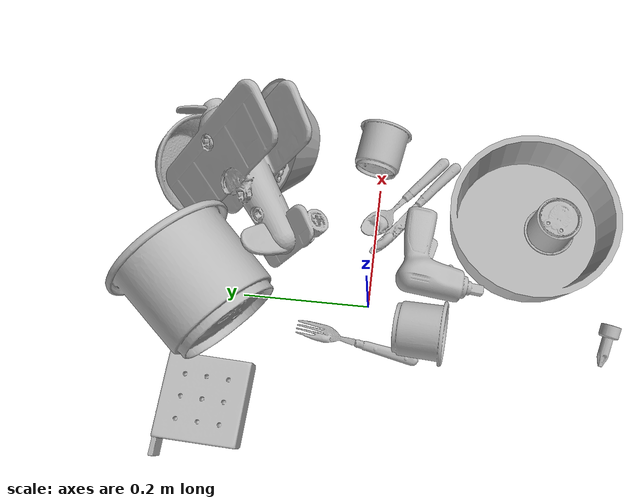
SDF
<sdf version="1.4">
  <world name="default">
    <light name="light1" type="point">
      <pose>0 0 1 0 0 0</pose>
      <diffuse>3 3 3 1</diffuse>
      <specular>3 3 3 1</specular>
    </light>
    <light name="light2" type="point">
      <pose>0 0.5 2 0 0 0</pose>
      <diffuse>1 1 1 1</diffuse>
      <specular>1 1 1 1</specular>
    </light>
    <light name="light3" type="point">
      <pose>0 0.5 2 0 0 0</pose>
      <diffuse>3 3 3 1</diffuse>
      <specular>3 3 3 1</specular>
    </light>
    <scene>
      <ambient>0.7 0.7 0.7</ambient>
    </scene>
    <model name="plate1">
      <link name="link_plate1">
        <collision name="default">
          <geometry>
            <mesh>
              <uri>model://pan_tefal/collision_meshes/collision.obj</uri>
              <scale>1.0 1.0 1.0</scale>
            </mesh>
          </geometry>
          <surface>
            <friction>
              <ode>
                <mu>0.5</mu>
                <mu2>0.5</mu2>
              </ode>
            </friction>
          <contact>
        <ode>
            <max_vel>0</max_vel>
            <min_depth>0.0001</min_depth>
            <kp>1e8</kp>
        </ode>
    </contact></surface>
        </collision>
        <visual name="default">
          <geometry>
            <mesh>
              <uri>model://pan_tefal/visual_meshes/visual.dae</uri>
              <scale>1.0 1.0 1.0</scale>
            </mesh>
          </geometry>
        </visual>
        <inertial>
          <mass>1.2414644956588745</mass>
          <pose>-0.0001800298341549933 3.278589065303095e-05 -0.00851493515074253 0.0008190165640447202 -0.0003301348973125405 -0.33185319573483557</pose>
          <inertia>
            <ixx>0.00856977</ixx>
            <iyy>0.008625018</iyy>
            <izz>0.015775295</izz>
            <ixy>0</ixy>
            <ixz>0</ixz>
            <iyz>0</iyz>
          </inertia>
        </inertial>
      </link>
      <pose>0.15739698708057404 -0.2437676340341568 0.03797392174601555 0.0004196589502284697 0.00042585784603500515 1.2570588503622488</pose>
    </model>
    <model name="cup1">
      <link name="link_cup1">
        <collision name="default">
          <geometry>
            <mesh>
              <uri>model://j_cups/collision_meshes/collision.obj</uri>
              <scale>2.0 2.0 2.0</scale>
            </mesh>
          </geometry>
          <surface>
            <friction>
              <ode>
                <mu>0.5</mu>
                <mu2>0.5</mu2>
              </ode>
            </friction>
          <contact>
        <ode>
            <max_vel>0</max_vel>
            <min_depth>0.0001</min_depth>
            <kp>1e8</kp>
        </ode>
    </contact></surface>
        </collision>
        <visual name="default">
          <geometry>
            <mesh>
              <uri>model://j_cups/visual_meshes/visual.dae</uri>
              <scale>2.0 2.0 2.0</scale>
            </mesh>
          </geometry>
        </visual>
        <inertial>
          <mass>0.42814481258392334</mass>
          <pose>0.0012329709716141224 0.0010797895956784487 -0.002695801667869091 0.030303634199985552 0.037580068488308346 0.43868666904956827</pose>
          <inertia>
            <ixx>0.0025146077</ixx>
            <iyy>0.0025407567</iyy>
            <izz>0.0028988216</izz>
            <ixy>0</ixy>
            <ixz>0</ixz>
            <iyz>0</iyz>
          </inertia>
        </inertial>
      </link>
      <pose>-0.00952103640884161 0.24774663150310516 0.09439494460821152 1.2956395495217365 1.0991745812894784 2.135702949480838</pose>
    </model>
    <model name="silverware1">
      <link name="link_silverware1">
        <collision name="default">
          <geometry>
            <mesh>
              <uri>model://fork/collision_meshes/collision.obj</uri>
              <scale>1.0 1.0 1.0</scale>
            </mesh>
          </geometry>
          <surface>
            <friction>
              <ode>
                <mu>0.5</mu>
                <mu2>0.5</mu2>
              </ode>
            </friction>
          <contact>
        <ode>
            <max_vel>0</max_vel>
            <min_depth>0.0001</min_depth>
            <kp>1e8</kp>
        </ode>
    </contact></surface>
        </collision>
        <visual name="default">
          <geometry>
            <mesh>
              <uri>model://fork/visual_meshes/visual.dae</uri>
              <scale>1.0 1.0 1.0</scale>
            </mesh>
          </geometry>
        </visual>
        <inertial>
          <mass>0.013809523545205593</mass>
          <pose>-0.029570044949650764 0.0004658822435885668 0.00032188615296036005 -0.013551743215227608 -0.010977837587661193 0.014453899243146438</pose>
          <inertia>
            <ixx>4.84102e-07</ixx>
            <iyy>3.6052697e-05</iyy>
            <izz>3.6269223e-05</izz>
            <ixy>0</ixy>
            <ixz>0</ixz>
            <iyz>0</iyz>
          </inertia>
        </inertial>
      </link>
      <pose>-0.059280022978782654 0.011664412915706635 0.005753587000072002 -0.18957219621553656 0.024068768488857865 1.3786547527045832</pose>
    </model>
    <model name="silverware2">
      <link name="link_silverware2">
        <collision name="default">
          <geometry>
            <mesh>
              <uri>model://knife/collision_meshes/collision.obj</uri>
              <scale>1.0 1.0 1.0</scale>
            </mesh>
          </geometry>
          <surface>
            <friction>
              <ode>
                <mu>0.5</mu>
                <mu2>0.5</mu2>
              </ode>
            </friction>
          <contact>
        <ode>
            <max_vel>0</max_vel>
            <min_depth>0.0001</min_depth>
            <kp>1e8</kp>
        </ode>
    </contact></surface>
        </collision>
        <visual name="default">
          <geometry>
            <mesh>
              <uri>model://knife/visual_meshes/visual.dae</uri>
              <scale>1.0 1.0 1.0</scale>
            </mesh>
          </geometry>
        </visual>
        <inertial>
          <mass>0.021972408518195152</mass>
          <pose>-0.023785250261425972 0.0015275123296305537 5.0620161346159875e-05 0.07305788583029697 0.01724841890740089 -0.007409824444555058</pose>
          <inertia>
            <ixx>6.2366604e-07</ixx>
            <iyy>8.441444e-05</iyy>
            <izz>8.46153e-05</izz>
            <ixy>0</ixy>
            <ixz>0</ixz>
            <iyz>0</iyz>
          </inertia>
        </inertial>
      </link>
      <pose>0.17234748601913452 -0.061739448457956314 0.005812203511595726 2.8887773972265487 0.025858460122174166 2.4788823390390653</pose>
    </model>
    <model name="silverware3">
      <link name="link_silverware3">
        <collision name="default">
          <geometry>
            <mesh>
              <uri>model://spoon/collision_meshes/collision.obj</uri>
              <scale>1.0 1.0 1.0</scale>
            </mesh>
          </geometry>
          <surface>
            <friction>
              <ode>
                <mu>0.5</mu>
                <mu2>0.5</mu2>
              </ode>
            </friction>
          <contact>
        <ode>
            <max_vel>0</max_vel>
            <min_depth>0.0001</min_depth>
            <kp>1e8</kp>
        </ode>
    </contact></surface>
        </collision>
        <visual name="default">
          <geometry>
            <mesh>
              <uri>model://spoon/visual_meshes/visual.dae</uri>
              <scale>1.0 1.0 1.0</scale>
            </mesh>
          </geometry>
        </visual>
        <inertial>
          <mass>0.026694269850850105</mass>
          <pose>-0.005526325199753046 -0.0016034168656915426 -0.0007271653739735484 0.035216710718480135 -0.03906584501417282 0.00615060951780049</pose>
          <inertia>
            <ixx>1.484779e-06</ixx>
            <iyy>0.000101570804</iyy>
            <izz>0.000102303035</izz>
            <ixy>0</ixy>
            <ixz>0</ixz>
            <iyz>0</iyz>
          </inertia>
        </inertial>
      </link>
      <pose>0.18812236189842224 -0.043878182768821716 0.008584658615291119 0.06133820281854431 0.02062438127546066 2.434279944008836</pose>
    </model>
    <model name="cup3">
      <link name="link_cup3">
        <collision name="default">
          <geometry>
            <mesh>
              <uri>model://f_cups/collision_meshes/collision.obj</uri>
              <scale>1.0 1.0 1.0</scale>
            </mesh>
          </geometry>
          <surface>
            <friction>
              <ode>
                <mu>0.5</mu>
                <mu2>0.5</mu2>
              </ode>
            </friction>
          <contact>
        <ode>
            <max_vel>0</max_vel>
            <min_depth>0.0001</min_depth>
            <kp>1e8</kp>
        </ode>
    </contact></surface>
        </collision>
        <visual name="default">
          <geometry>
            <mesh>
              <uri>model://f_cups/visual_meshes/visual.dae</uri>
              <scale>1.0 1.0 1.0</scale>
            </mesh>
          </geometry>
        </visual>
        <inertial>
          <mass>0.09255705773830414</mass>
          <pose>-0.0031714672222733498 -0.0006240062648430467 -0.0036555363330990076 0.7862294428046025 -0.26079256257201844 -0.18237393521905715</pose>
          <inertia>
            <ixx>8.700612e-05</ixx>
            <iyy>9.127041e-05</iyy>
            <izz>9.501506e-05</izz>
            <ixy>0</ixy>
            <ixz>0</ixz>
            <iyz>0</iyz>
          </inertia>
        </inertial>
      </link>
      <pose>0.15353316068649292 -0.2800399661064148 0.043854787945747375 3.1394884545106017 0.0034819108268126083 1.7627614041438897</pose>
    </model>
    <model name="cup4">
      <link name="link_cup4">
        <collision name="default">
          <geometry>
            <mesh>
              <uri>model://g_cups/collision_meshes/collision.obj</uri>
              <scale>1.0 1.0 1.0</scale>
            </mesh>
          </geometry>
          <surface>
            <friction>
              <ode>
                <mu>0.5</mu>
                <mu2>0.5</mu2>
              </ode>
            </friction>
          <contact>
        <ode>
            <max_vel>0</max_vel>
            <min_depth>0.0001</min_depth>
            <kp>1e8</kp>
        </ode>
    </contact></surface>
        </collision>
        <visual name="default">
          <geometry>
            <mesh>
              <uri>model://g_cups/visual_meshes/visual.dae</uri>
              <scale>1.0 1.0 1.0</scale>
            </mesh>
          </geometry>
        </visual>
        <inertial>
          <mass>0.09045539051294327</mass>
          <pose>-0.0007946272380650043 -4.206356970826164e-05 -0.0021329366136342287 -0.21382427470227655 -0.31410603394020525 0.31120189460551634</pose>
          <inertia>
            <ixx>0.000105581705</ixx>
            <iyy>0.000105222556</iyy>
            <izz>0.000109364446</izz>
            <ixy>0</ixy>
            <ixz>0</ixz>
            <iyz>0</iyz>
          </inertia>
        </inertial>
      </link>
      <pose>0.25497156381607056 0.005675689782947302 0.03986061364412308 -1.3512770732713153 -1.099857862232978 -1.927333309357326</pose>
    </model>
    <model name="cup5">
      <link name="link_cup5">
        <collision name="default">
          <geometry>
            <mesh>
              <uri>model://i_cups/collision_meshes/collision.obj</uri>
              <scale>1.0 1.0 1.0</scale>
            </mesh>
          </geometry>
          <surface>
            <friction>
              <ode>
                <mu>0.5</mu>
                <mu2>0.5</mu2>
              </ode>
            </friction>
          <contact>
        <ode>
            <max_vel>0</max_vel>
            <min_depth>0.0001</min_depth>
            <kp>1e8</kp>
        </ode>
    </contact></surface>
        </collision>
        <visual name="default">
          <geometry>
            <mesh>
              <uri>model://i_cups/visual_meshes/visual.dae</uri>
              <scale>1.0 1.0 1.0</scale>
            </mesh>
          </geometry>
        </visual>
        <inertial>
          <mass>0.0815454050898552</mass>
          <pose>0.0001123997790273279 0.00016797320859041065 -0.0008579009445384145 -0.02898318353055437 -0.03987301779891007 -0.3459082462056558</pose>
          <inertia>
            <ixx>0.0001129008</ixx>
            <iyy>0.000113895556</iyy>
            <izz>0.00012618494</izz>
            <ixy>0</ixy>
            <ixz>0</ixz>
            <iyz>0</iyz>
          </inertia>
        </inertial>
      </link>
      <pose>-0.03662304952740669 -0.08226019144058228 0.044800709933042526 -0.732898970645527 1.3945832026724736 -2.375661015102063</pose>
    </model>
    <model name="bowl1">
      <link name="link_bowl1">
        <collision name="default">
          <geometry>
            <mesh>
              <uri>model://bowl/collision_meshes/collision.obj</uri>
              <scale>1.0 1.0 1.0</scale>
            </mesh>
          </geometry>
          <surface>
            <friction>
              <ode>
                <mu>0.5</mu>
                <mu2>0.5</mu2>
              </ode>
            </friction>
          <contact>
        <ode>
            <max_vel>0</max_vel>
            <min_depth>0.0001</min_depth>
            <kp>1e8</kp>
        </ode>
    </contact></surface>
        </collision>
        <visual name="default">
          <geometry>
            <mesh>
              <uri>model://bowl/visual_meshes/visual.dae</uri>
              <scale>1.0 1.0 1.0</scale>
            </mesh>
          </geometry>
        </visual>
        <inertial>
          <mass>0.1349102407693863</mass>
          <pose>0.00020445192058105022 -0.0010302069131284952 -0.0008042648551054299 -0.01576408127006171 0.01454679335072616 0.7140405111038781</pose>
          <inertia>
            <ixx>0.00030989948</ixx>
            <iyy>0.00030297515</iyy>
            <izz>0.0005213576</izz>
            <ixy>0</ixy>
            <ixz>0</ixz>
            <iyz>0</iyz>
          </inertia>
        </inertial>
      </link>
      <pose>0.19234971702098846 0.3039990961551666 0.05913102254271507 -0.8785346872212222 -0.6819770341832256 2.3510258501259798</pose>
    </model>
    <model name="bowl2">
      <link name="link_bowl2">
        <collision name="default">
          <geometry>
            <mesh>
              <uri>model://bowl_a/collision_meshes/collision.obj</uri>
              <scale>1.0 1.0 1.0</scale>
            </mesh>
          </geometry>
          <surface>
            <friction>
              <ode>
                <mu>0.5</mu>
                <mu2>0.5</mu2>
              </ode>
            </friction>
          <contact>
        <ode>
            <max_vel>0</max_vel>
            <min_depth>0.0001</min_depth>
            <kp>1e8</kp>
        </ode>
    </contact></surface>
        </collision>
        <visual name="default">
          <geometry>
            <mesh>
              <uri>model://bowl_a/visual_meshes/visual.dae</uri>
              <scale>1.0 1.0 1.0</scale>
            </mesh>
          </geometry>
        </visual>
        <inertial>
          <mass>0.4816342294216156</mass>
          <pose>0.000278677063761279 4.73155923828017e-05 -0.0013765296898782253 -0.0009805427744981278 -0.0010938171301827632 -0.19123023792191385</pose>
          <inertia>
            <ixx>0.0013712347</ixx>
            <iyy>0.0013796532</iyy>
            <izz>0.0024387941</izz>
            <ixy>0</ixy>
            <ixz>0</ixz>
            <iyz>0</iyz>
          </inertia>
        </inertial>
      </link>
      <pose>0.23954430222511292 0.1581747829914093 0.06339243799448013 0.9280236366151215 0.14379579859671918 -3.0425965036007256</pose>
    </model>
    <model name="toy1">
      <link name="link_toy1">
        <collision name="default">
          <geometry>
            <mesh>
              <uri>model://a_toy_airplane/collision_meshes/collision.obj</uri>
              <scale>1.0 1.0 1.0</scale>
            </mesh>
          </geometry>
          <surface>
            <friction>
              <ode>
                <mu>0.5</mu>
                <mu2>0.5</mu2>
              </ode>
            </friction>
          <contact>
        <ode>
            <max_vel>0</max_vel>
            <min_depth>0.0001</min_depth>
            <kp>1e8</kp>
        </ode>
    </contact></surface>
        </collision>
        <visual name="default">
          <geometry>
            <mesh>
              <uri>model://a_toy_airplane/visual_meshes/visual.dae</uri>
              <scale>1.0 1.0 1.0</scale>
            </mesh>
          </geometry>
        </visual>
        <inertial>
          <mass>1.6936675310134888</mass>
          <pose>0.025165095925331116 -0.0037073225248605013 -0.0011962444987148046 -0.01201699252327453 -0.146634996228158 0.004149091382990828</pose>
          <inertia>
            <ixx>0.0061505185</ixx>
            <iyy>0.008962553</iyy>
            <izz>0.010494047</izz>
            <ixy>0</ixy>
            <ixz>0</ixz>
            <iyz>0</iyz>
          </inertia>
        </inertial>
      </link>
      <pose>0.15208955109119415 0.19040745496749878 0.11736806482076645 -0.8014737610601329 0.011524440604004546 0.4723472810990577</pose>
    </model>
    <model name="toy2">
      <link name="link_toy2">
        <collision name="default">
          <geometry>
            <mesh>
              <uri>model://c_lego_duplo/collision_meshes/collision.obj</uri>
              <scale>1.0 1.0 1.0</scale>
            </mesh>
          </geometry>
          <surface>
            <friction>
              <ode>
                <mu>0.5</mu>
                <mu2>0.5</mu2>
              </ode>
            </friction>
          <contact>
        <ode>
            <max_vel>0</max_vel>
            <min_depth>0.0001</min_depth>
            <kp>1e8</kp>
        </ode>
    </contact></surface>
        </collision>
        <visual name="default">
          <geometry>
            <mesh>
              <uri>model://c_lego_duplo/visual_meshes/visual.dae</uri>
              <scale>1.0 1.0 1.0</scale>
            </mesh>
          </geometry>
        </visual>
        <inertial>
          <mass>0.01636073924601078</mass>
          <pose>0.000316459103487432 0.0001946457487065345 0.001045315177179873 -0.01152079658800189 0.005900071110555828 0.03110036538654021</pose>
          <inertia>
            <ixx>6.295917e-06</ixx>
            <iyy>2.0111436e-06</iyy>
            <izz>7.357428e-06</izz>
            <ixy>0</ixy>
            <ixz>0</ixz>
            <iyz>0</iyz>
          </inertia>
        </inertial>
      </link>
      <pose>0.21426324546337128 0.1704113632440567 0.039572980254888535 -2.065053745255719 1.1195285274787168 2.5067725885514403</pose>
    </model>
    <model name="toy3">
      <link name="link_toy3">
        <collision name="default">
          <geometry>
            <mesh>
              <uri>model://nine_hole_peg_test/collision_meshes/collision.obj</uri>
              <scale>1.0 1.0 1.0</scale>
            </mesh>
          </geometry>
          <surface>
            <friction>
              <ode>
                <mu>0.5</mu>
                <mu2>0.5</mu2>
              </ode>
            </friction>
          <contact>
        <ode>
            <max_vel>0</max_vel>
            <min_depth>0.0001</min_depth>
            <kp>1e8</kp>
        </ode>
    </contact></surface>
        </collision>
        <visual name="default">
          <geometry>
            <mesh>
              <uri>model://nine_hole_peg_test/visual_meshes/visual.dae</uri>
              <scale>1.0 1.0 1.0</scale>
            </mesh>
          </geometry>
        </visual>
        <inertial>
          <mass>0.9464474320411682</mass>
          <pose>-0.004617386497557163 -0.009647613391280174 2.646068787726108e-05 -0.0014666793204268175 0.0007194166079670136 -0.6342420609245715</pose>
          <inertia>
            <ixx>0.0014799263</ixx>
            <iyy>0.0013817915</iyy>
            <izz>0.002593267</izz>
            <ixy>0</ixy>
            <ixz>0</ixz>
            <iyz>0</iyz>
          </inertia>
        </inertial>
      </link>
      <pose>-0.1793738305568695 0.2343805730342865 0.02077057957649231 -2.499636659549234e-05 -1.1071366987112047e-06 1.5324542852562544</pose>
    </model>
    <model name="toy4">
      <link name="link_toy4">
        <collision name="default">
          <geometry>
            <mesh>
              <uri>model://d_toy_airplane/collision_meshes/collision.obj</uri>
              <scale>1.0 1.0 1.0</scale>
            </mesh>
          </geometry>
          <surface>
            <friction>
              <ode>
                <mu>0.5</mu>
                <mu2>0.5</mu2>
              </ode>
            </friction>
          <contact>
        <ode>
            <max_vel>0</max_vel>
            <min_depth>0.0001</min_depth>
            <kp>1e8</kp>
        </ode>
    </contact></surface>
        </collision>
        <visual name="default">
          <geometry>
            <mesh>
              <uri>model://d_toy_airplane/visual_meshes/visual.dae</uri>
              <scale>1.0 1.0 1.0</scale>
            </mesh>
          </geometry>
        </visual>
        <inertial>
          <mass>0.021776849403977394</mass>
          <pose>9.410295024281368e-05 -5.809321373817511e-05 -0.011728097684681416 0.0002661671660100631 0.004679022103859929 0.519291232465637</pose>
          <inertia>
            <ixx>6.5282748e-06</ixx>
            <iyy>6.5331997e-06</iyy>
            <izz>1.9709291e-06</izz>
            <ixy>0</ixy>
            <ixz>0</ixz>
            <iyz>0</iyz>
          </inertia>
        </inertial>
      </link>
      <pose>-0.025612670928239822 -0.372167706489563 0.011268530040979385 -1.8055353545287736 -0.21033676499721593 1.4174239444909449</pose>
    </model>
    <model name="toy5">
      <link name="link_toy5">
        <collision name="default">
          <geometry>
            <mesh>
              <uri>model://b_toy_airplane/collision_meshes/collision.obj</uri>
              <scale>1.0 1.0 1.0</scale>
            </mesh>
          </geometry>
          <surface>
            <friction>
              <ode>
                <mu>0.5</mu>
                <mu2>0.5</mu2>
              </ode>
            </friction>
          <contact>
        <ode>
            <max_vel>0</max_vel>
            <min_depth>0.0001</min_depth>
            <kp>1e8</kp>
        </ode>
    </contact></surface>
        </collision>
        <visual name="default">
          <geometry>
            <mesh>
              <uri>model://b_toy_airplane/visual_meshes/visual.dae</uri>
              <scale>1.0 1.0 1.0</scale>
            </mesh>
          </geometry>
        </visual>
        <inertial>
          <mass>0.25237053632736206</mass>
          <pose>0.00508136348798871 0.004015584476292133 0.00954306498169899 -0.04001808288480986 -0.0402218063825515 -0.5601503558886168</pose>
          <inertia>
            <ixx>0.00046853055</ixx>
            <iyy>0.00018727628</iyy>
            <izz>0.0005828988</izz>
            <ixy>0</ixy>
            <ixz>0</ixz>
            <iyz>0</iyz>
          </inertia>
        </inertial>
      </link>
      <pose>0.07676978409290314 -0.0841703787446022 0.03652346879243851 3.1017185580566964 0.07820792324574283 -1.6587760986482059</pose>
    </model>
  <physics type="ode">
      <max_contacts>50</max_contacts>
      <ode>
        <solver>
          <type>quick</type>
          <iters>75</iters>
        </solver>
        <constraints>
          <contact_max_correcting_vel>0</contact_max_correcting_vel>
          <contact_surface_layer>0</contact_surface_layer>
        </constraints>
      </ode>
    </physics></world>
</sdf>
